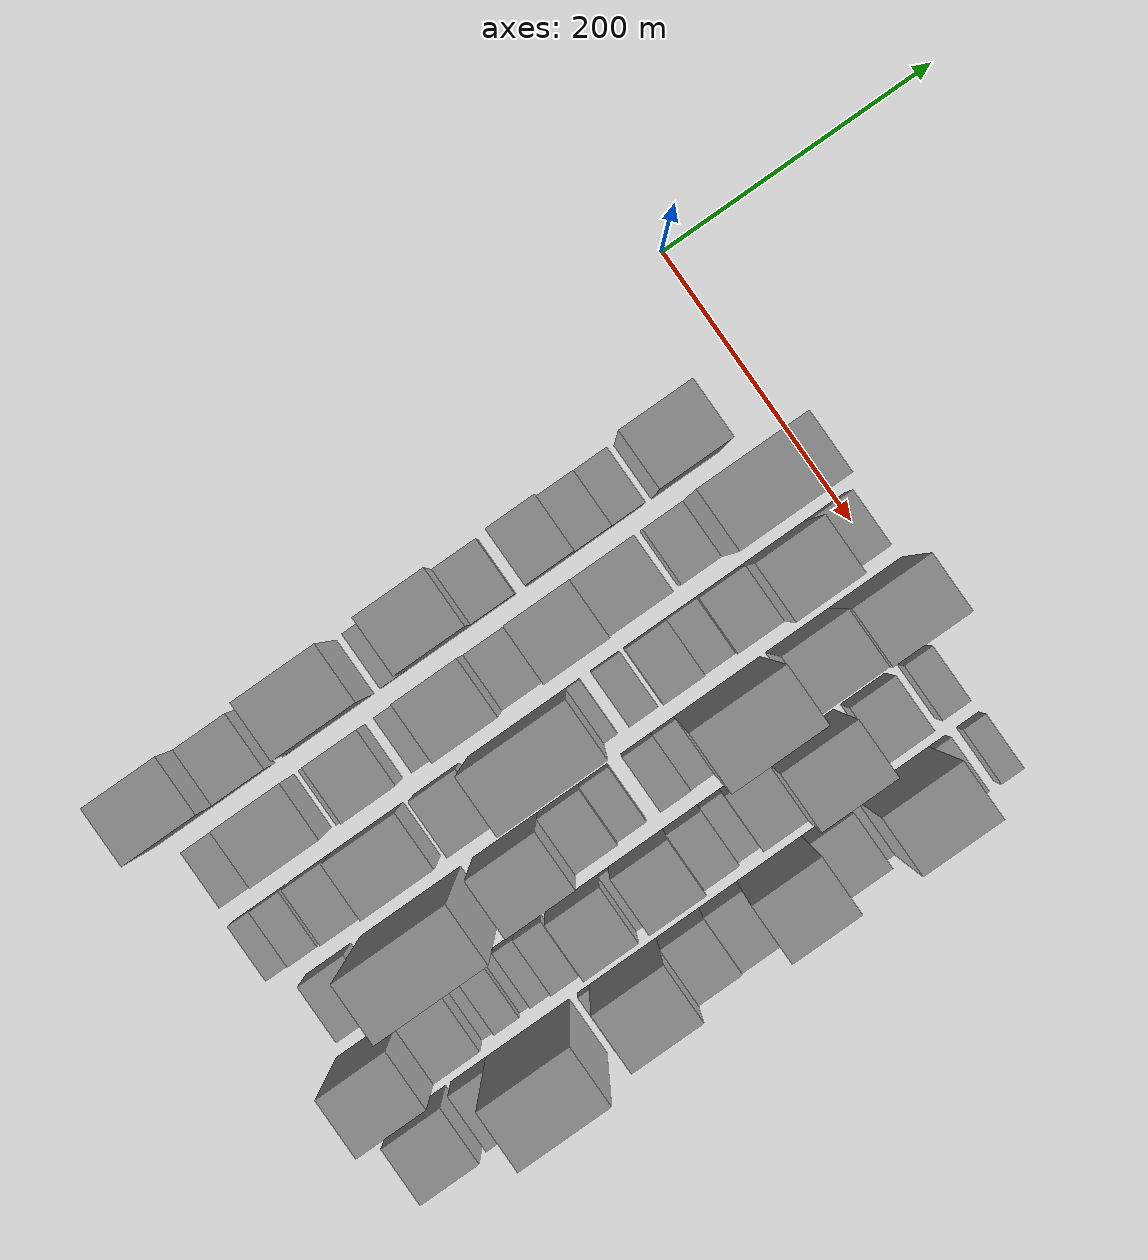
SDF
<sdf version="1.6">
 <world name="default">
  <model name="building_16">
   <static>1</static>
   <pose>100.0000 -434.1045 0 0.000000 0.000000 0.000000</pose>
   <link name="link">
    <pose>0 0 66.00 0 0 0</pose>
    <collision name="collision"><geometry><box><size>40.0000 50.8302 132.0000</size></box></geometry></collision>
    <visual name="visual">
     <cast_shadows>0</cast_shadows>
     <geometry><box><size>40.0000 50.8302 132.0000</size></box></geometry>
     <material>
      <script>
       <uri>model://grey_wall/materials/scripts</uri>
       <uri>model://grey_wall/materials/textures</uri>
       <name>vrc/grey_wall</name>
      </script>
     </material>
    </visual>
   </link>
  </model>
  <model name="building_17">
   <static>1</static>
   <pose>100.0000 -390.0490 0 0.000000 0.000000 0.000000</pose>
   <link name="link">
    <pose>0 0 31.50 0 0 0</pose>
    <collision name="collision"><geometry><box><size>40.0000 37.2809 63.0000</size></box></geometry></collision>
    <visual name="visual">
     <cast_shadows>0</cast_shadows>
     <geometry><box><size>40.0000 37.2809 63.0000</size></box></geometry>
     <material>
      <script>
       <uri>model://grey_wall/materials/scripts</uri>
       <uri>model://grey_wall/materials/textures</uri>
       <name>vrc/grey_wall</name>
      </script>
     </material>
    </visual>
   </link>
  </model>
  <model name="building_18">
   <static>1</static>
   <pose>100.0000 -359.2565 0 0.000000 0.000000 0.000000</pose>
   <link name="link">
    <pose>0 0 9.00 0 0 0</pose>
    <collision name="collision"><geometry><box><size>40.0000 8.3040 18.0000</size></box></geometry></collision>
    <visual name="visual">
     <cast_shadows>0</cast_shadows>
     <geometry><box><size>40.0000 8.3040 18.0000</size></box></geometry>
     <material>
      <script>
       <uri>model://grey_wall/materials/scripts</uri>
       <uri>model://grey_wall/materials/textures</uri>
       <name>vrc/grey_wall</name>
      </script>
     </material>
    </visual>
   </link>
  </model>
  <model name="building_19">
   <static>1</static>
   <pose>100.0000 -326.4940 0 0.000000 0.000000 0.000000</pose>
   <link name="link">
    <pose>0 0 73.50 0 0 0</pose>
    <collision name="collision"><geometry><box><size>40.0000 57.2211 147.0000</size></box></geometry></collision>
    <visual name="visual">
     <cast_shadows>0</cast_shadows>
     <geometry><box><size>40.0000 57.2211 147.0000</size></box></geometry>
     <material>
      <script>
       <uri>model://grey_wall/materials/scripts</uri>
       <uri>model://grey_wall/materials/textures</uri>
       <name>vrc/grey_wall</name>
      </script>
     </material>
    </visual>
   </link>
  </model>
  <model name="building_20">
   <static>1</static>
   <pose>100.0000 -281.8136 0 0.000000 0.000000 0.000000</pose>
   <link name="link">
    <pose>0 0 16.50 0 0 0</pose>
    <collision name="collision"><geometry><box><size>40.0000 18.1396 33.0000</size></box></geometry></collision>
    <visual name="visual">
     <cast_shadows>0</cast_shadows>
     <geometry><box><size>40.0000 18.1396 33.0000</size></box></geometry>
     <material>
      <script>
       <uri>model://grey_wall/materials/scripts</uri>
       <uri>model://grey_wall/materials/textures</uri>
       <name>vrc/grey_wall</name>
      </script>
     </material>
    </visual>
   </link>
  </model>
  <model name="building_21">
   <static>1</static>
   <pose>100.0000 -248.3978 0 0.000000 0.000000 0.000000</pose>
   <link name="link">
    <pose>0 0 72.00 0 0 0</pose>
    <collision name="collision"><geometry><box><size>40.0000 48.6920 144.0000</size></box></geometry></collision>
    <visual name="visual">
     <cast_shadows>0</cast_shadows>
     <geometry><box><size>40.0000 48.6920 144.0000</size></box></geometry>
     <material>
      <script>
       <uri>model://grey_wall/materials/scripts</uri>
       <uri>model://grey_wall/materials/textures</uri>
       <name>vrc/grey_wall</name>
      </script>
     </material>
    </visual>
   </link>
  </model>
  <model name="building_22">
   <static>1</static>
   <pose>100.0000 -208.1583 0 0.000000 0.000000 0.000000</pose>
   <link name="link">
    <pose>0 0 27.00 0 0 0</pose>
    <collision name="collision"><geometry><box><size>40.0000 31.7872 54.0000</size></box></geometry></collision>
    <visual name="visual">
     <cast_shadows>0</cast_shadows>
     <geometry><box><size>40.0000 31.7872 54.0000</size></box></geometry>
     <material>
      <script>
       <uri>model://grey_wall/materials/scripts</uri>
       <uri>model://grey_wall/materials/textures</uri>
       <name>vrc/grey_wall</name>
      </script>
     </material>
    </visual>
   </link>
  </model>
  <model name="building_23">
   <static>1</static>
   <pose>100.0000 -166.8493 0 0.000000 0.000000 0.000000</pose>
   <link name="link">
    <pose>0 0 46.50 0 0 0</pose>
    <collision name="collision"><geometry><box><size>40.0000 34.8307 93.0000</size></box></geometry></collision>
    <visual name="visual">
     <cast_shadows>0</cast_shadows>
     <geometry><box><size>40.0000 34.8307 93.0000</size></box></geometry>
     <material>
      <script>
       <uri>model://grey_wall/materials/scripts</uri>
       <uri>model://grey_wall/materials/textures</uri>
       <name>vrc/grey_wall</name>
      </script>
     </material>
    </visual>
   </link>
  </model>
  <model name="building_24">
   <static>1</static>
   <pose>100.0000 -135.8265 0 0.000000 0.000000 0.000000</pose>
   <link name="link">
    <pose>0 0 27.00 0 0 0</pose>
    <collision name="collision"><geometry><box><size>40.0000 27.2150 54.0000</size></box></geometry></collision>
    <visual name="visual">
     <cast_shadows>0</cast_shadows>
     <geometry><box><size>40.0000 27.2150 54.0000</size></box></geometry>
     <material>
      <script>
       <uri>model://grey_wall/materials/scripts</uri>
       <uri>model://grey_wall/materials/textures</uri>
       <name>vrc/grey_wall</name>
      </script>
     </material>
    </visual>
   </link>
  </model>
  <model name="building_25">
   <static>1</static>
   <pose>100.0000 -110.0625 0 0.000000 0.000000 0.000000</pose>
   <link name="link">
    <pose>0 0 24.00 0 0 0</pose>
    <collision name="collision"><geometry><box><size>40.0000 24.3129 48.0000</size></box></geometry></collision>
    <visual name="visual">
     <cast_shadows>0</cast_shadows>
     <geometry><box><size>40.0000 24.3129 48.0000</size></box></geometry>
     <material>
      <script>
       <uri>model://grey_wall/materials/scripts</uri>
       <uri>model://grey_wall/materials/textures</uri>
       <name>vrc/grey_wall</name>
      </script>
     </material>
    </visual>
   </link>
  </model>
  <model name="building_26">
   <static>1</static>
   <pose>100.0000 -66.6376 0 0.000000 0.000000 0.000000</pose>
   <link name="link">
    <pose>0 0 75.00 0 0 0</pose>
    <collision name="collision"><geometry><box><size>40.0000 50.5369 150.0000</size></box></geometry></collision>
    <visual name="visual">
     <cast_shadows>0</cast_shadows>
     <geometry><box><size>40.0000 50.5369 150.0000</size></box></geometry>
     <material>
      <script>
       <uri>model://grey_wall/materials/scripts</uri>
       <uri>model://grey_wall/materials/textures</uri>
       <name>vrc/grey_wall</name>
      </script>
     </material>
    </visual>
   </link>
  </model>
  <model name="building_60">
   <static>1</static>
   <pose>152.0000 -428.1090 0 0.000000 0.000000 0.000000</pose>
   <link name="link">
    <pose>0 0 25.50 0 0 0</pose>
    <collision name="collision"><geometry><box><size>40.0000 26.8173 51.0000</size></box></geometry></collision>
    <visual name="visual">
     <cast_shadows>0</cast_shadows>
     <geometry><box><size>40.0000 26.8173 51.0000</size></box></geometry>
     <material>
      <script>
       <uri>model://grey_wall/materials/scripts</uri>
       <uri>model://grey_wall/materials/textures</uri>
       <name>vrc/grey_wall</name>
      </script>
     </material>
    </visual>
   </link>
  </model>
  <model name="building_61">
   <static>1</static>
   <pose>152.0000 -390.2419 0 0.000000 0.000000 0.000000</pose>
   <link name="link">
    <pose>0 0 43.50 0 0 0</pose>
    <collision name="collision"><geometry><box><size>40.0000 48.9170 87.0000</size></box></geometry></collision>
    <visual name="visual">
     <cast_shadows>0</cast_shadows>
     <geometry><box><size>40.0000 48.9170 87.0000</size></box></geometry>
     <material>
      <script>
       <uri>model://grey_wall/materials/scripts</uri>
       <uri>model://grey_wall/materials/textures</uri>
       <name>vrc/grey_wall</name>
      </script>
     </material>
    </visual>
   </link>
  </model>
  <model name="building_62">
   <static>1</static>
   <pose>152.0000 -356.3260 0 0.000000 0.000000 0.000000</pose>
   <link name="link">
    <pose>0 0 9.00 0 0 0</pose>
    <collision name="collision"><geometry><box><size>40.0000 8.9146 18.0000</size></box></geometry></collision>
    <visual name="visual">
     <cast_shadows>0</cast_shadows>
     <geometry><box><size>40.0000 8.9146 18.0000</size></box></geometry>
     <material>
      <script>
       <uri>model://grey_wall/materials/scripts</uri>
       <uri>model://grey_wall/materials/textures</uri>
       <name>vrc/grey_wall</name>
      </script>
     </material>
    </visual>
   </link>
  </model>
  <model name="building_63">
   <static>1</static>
   <pose>152.0000 -332.4285 0 0.000000 0.000000 0.000000</pose>
   <link name="link">
    <pose>0 0 36.00 0 0 0</pose>
    <collision name="collision"><geometry><box><size>40.0000 38.8804 72.0000</size></box></geometry></collision>
    <visual name="visual">
     <cast_shadows>0</cast_shadows>
     <geometry><box><size>40.0000 38.8804 72.0000</size></box></geometry>
     <material>
      <script>
       <uri>model://grey_wall/materials/scripts</uri>
       <uri>model://grey_wall/materials/textures</uri>
       <name>vrc/grey_wall</name>
      </script>
     </material>
    </visual>
   </link>
  </model>
  <model name="building_64">
   <static>1</static>
   <pose>152.0000 -293.2963 0 0.000000 0.000000 0.000000</pose>
   <link name="link">
    <pose>0 0 18.00 0 0 0</pose>
    <collision name="collision"><geometry><box><size>40.0000 21.3841 36.0000</size></box></geometry></collision>
    <visual name="visual">
     <cast_shadows>0</cast_shadows>
     <geometry><box><size>40.0000 21.3841 36.0000</size></box></geometry>
     <material>
      <script>
       <uri>model://grey_wall/materials/scripts</uri>
       <uri>model://grey_wall/materials/textures</uri>
       <name>vrc/grey_wall</name>
      </script>
     </material>
    </visual>
   </link>
  </model>
  <model name="building_65">
   <static>1</static>
   <pose>152.0000 -260.2634 0 0.000000 0.000000 0.000000</pose>
   <link name="link">
    <pose>0 0 73.50 0 0 0</pose>
    <collision name="collision"><geometry><box><size>40.0000 44.6818 147.0000</size></box></geometry></collision>
    <visual name="visual">
     <cast_shadows>0</cast_shadows>
     <geometry><box><size>40.0000 44.6818 147.0000</size></box></geometry>
     <material>
      <script>
       <uri>model://grey_wall/materials/scripts</uri>
       <uri>model://grey_wall/materials/textures</uri>
       <name>vrc/grey_wall</name>
      </script>
     </material>
    </visual>
   </link>
  </model>
  <model name="building_66">
   <static>1</static>
   <pose>152.0000 -222.4888 0 0.000000 0.000000 0.000000</pose>
   <link name="link">
    <pose>0 0 27.00 0 0 0</pose>
    <collision name="collision"><geometry><box><size>40.0000 30.8674 54.0000</size></box></geometry></collision>
    <visual name="visual">
     <cast_shadows>0</cast_shadows>
     <geometry><box><size>40.0000 30.8674 54.0000</size></box></geometry>
     <material>
      <script>
       <uri>model://grey_wall/materials/scripts</uri>
       <uri>model://grey_wall/materials/textures</uri>
       <name>vrc/grey_wall</name>
      </script>
     </material>
    </visual>
   </link>
  </model>
  <model name="building_67">
   <static>1</static>
   <pose>152.0000 -184.3008 0 0.000000 0.000000 0.000000</pose>
   <link name="link">
    <pose>0 0 67.50 0 0 0</pose>
    <collision name="collision"><geometry><box><size>40.0000 45.5087 135.0000</size></box></geometry></collision>
    <visual name="visual">
     <cast_shadows>0</cast_shadows>
     <geometry><box><size>40.0000 45.5087 135.0000</size></box></geometry>
     <material>
      <script>
       <uri>model://grey_wall/materials/scripts</uri>
       <uri>model://grey_wall/materials/textures</uri>
       <name>vrc/grey_wall</name>
      </script>
     </material>
    </visual>
   </link>
  </model>
  <model name="building_68">
   <static>1</static>
   <pose>152.0000 -138.7405 0 0.000000 0.000000 0.000000</pose>
   <link name="link">
    <pose>0 0 43.50 0 0 0</pose>
    <collision name="collision"><geometry><box><size>40.0000 45.6117 87.0000</size></box></geometry></collision>
    <visual name="visual">
     <cast_shadows>0</cast_shadows>
     <geometry><box><size>40.0000 45.6117 87.0000</size></box></geometry>
     <material>
      <script>
       <uri>model://grey_wall/materials/scripts</uri>
       <uri>model://grey_wall/materials/textures</uri>
       <name>vrc/grey_wall</name>
      </script>
     </material>
    </visual>
   </link>
  </model>
  <model name="building_69">
   <static>1</static>
   <pose>152.0000 -94.4507 0 0.000000 0.000000 0.000000</pose>
   <link name="link">
    <pose>0 0 28.50 0 0 0</pose>
    <collision name="collision"><geometry><box><size>40.0000 28.9679 57.0000</size></box></geometry></collision>
    <visual name="visual">
     <cast_shadows>0</cast_shadows>
     <geometry><box><size>40.0000 28.9679 57.0000</size></box></geometry>
     <material>
      <script>
       <uri>model://grey_wall/materials/scripts</uri>
       <uri>model://grey_wall/materials/textures</uri>
       <name>vrc/grey_wall</name>
      </script>
     </material>
    </visual>
   </link>
  </model>
  <model name="building_70">
   <static>1</static>
   <pose>152.0000 -43.6034 0 0.000000 0.000000 0.000000</pose>
   <link name="link">
    <pose>0 0 112.50 0 0 0</pose>
    <collision name="collision"><geometry><box><size>40.0000 72.7267 225.0000</size></box></geometry></collision>
    <visual name="visual">
     <cast_shadows>0</cast_shadows>
     <geometry><box><size>40.0000 72.7267 225.0000</size></box></geometry>
     <material>
      <script>
       <uri>model://grey_wall/materials/scripts</uri>
       <uri>model://grey_wall/materials/textures</uri>
       <name>vrc/grey_wall</name>
      </script>
     </material>
    </visual>
   </link>
  </model>
  <model name="building_112">
   <static>1</static>
   <pose>204.0000 -438.7991 0 0.000000 0.000000 0.000000</pose>
   <link name="link">
    <pose>0 0 15.00 0 0 0</pose>
    <collision name="collision"><geometry><box><size>40.0000 17.3068 30.0000</size></box></geometry></collision>
    <visual name="visual">
     <cast_shadows>0</cast_shadows>
     <geometry><box><size>40.0000 17.3068 30.0000</size></box></geometry>
     <material>
      <script>
       <uri>model://grey_wall/materials/scripts</uri>
       <uri>model://grey_wall/materials/textures</uri>
       <name>vrc/grey_wall</name>
      </script>
     </material>
    </visual>
   </link>
  </model>
  <model name="building_113">
   <static>1</static>
   <pose>204.0000 -419.4457 0 0.000000 0.000000 0.000000</pose>
   <link name="link">
    <pose>0 0 21.00 0 0 0</pose>
    <collision name="collision"><geometry><box><size>40.0000 21.4001 42.0000</size></box></geometry></collision>
    <visual name="visual">
     <cast_shadows>0</cast_shadows>
     <geometry><box><size>40.0000 21.4001 42.0000</size></box></geometry>
     <material>
      <script>
       <uri>model://grey_wall/materials/scripts</uri>
       <uri>model://grey_wall/materials/textures</uri>
       <name>vrc/grey_wall</name>
      </script>
     </material>
    </visual>
   </link>
  </model>
  <model name="building_114">
   <static>1</static>
   <pose>204.0000 -388.9459 0 0.000000 0.000000 0.000000</pose>
   <link name="link">
    <pose>0 0 28.50 0 0 0</pose>
    <collision name="collision"><geometry><box><size>40.0000 31.5996 57.0000</size></box></geometry></collision>
    <visual name="visual">
     <cast_shadows>0</cast_shadows>
     <geometry><box><size>40.0000 31.5996 57.0000</size></box></geometry>
     <material>
      <script>
       <uri>model://grey_wall/materials/scripts</uri>
       <uri>model://grey_wall/materials/textures</uri>
       <name>vrc/grey_wall</name>
      </script>
     </material>
    </visual>
   </link>
  </model>
  <model name="building_115">
   <static>1</static>
   <pose>204.0000 -347.1856 0 0.000000 0.000000 0.000000</pose>
   <link name="link">
    <pose>0 0 43.50 0 0 0</pose>
    <collision name="collision"><geometry><box><size>40.0000 51.9211 87.0000</size></box></geometry></collision>
    <visual name="visual">
     <cast_shadows>0</cast_shadows>
     <geometry><box><size>40.0000 51.9211 87.0000</size></box></geometry>
     <material>
      <script>
       <uri>model://grey_wall/materials/scripts</uri>
       <uri>model://grey_wall/materials/textures</uri>
       <name>vrc/grey_wall</name>
      </script>
     </material>
    </visual>
   </link>
  </model>
  <model name="building_116">
   <static>1</static>
   <pose>204.0000 -296.3285 0 0.000000 0.000000 0.000000</pose>
   <link name="link">
    <pose>0 0 33.00 0 0 0</pose>
    <collision name="collision"><geometry><box><size>40.0000 33.7931 66.0000</size></box></geometry></collision>
    <visual name="visual">
     <cast_shadows>0</cast_shadows>
     <geometry><box><size>40.0000 33.7931 66.0000</size></box></geometry>
     <material>
      <script>
       <uri>model://grey_wall/materials/scripts</uri>
       <uri>model://grey_wall/materials/textures</uri>
       <name>vrc/grey_wall</name>
      </script>
     </material>
    </visual>
   </link>
  </model>
  <model name="building_117">
   <static>1</static>
   <pose>204.0000 -236.9912 0 0.000000 0.000000 0.000000</pose>
   <link name="link">
    <pose>0 0 96.00 0 0 0</pose>
    <collision name="collision"><geometry><box><size>40.0000 72.8815 192.0000</size></box></geometry></collision>
    <visual name="visual">
     <cast_shadows>0</cast_shadows>
     <geometry><box><size>40.0000 72.8815 192.0000</size></box></geometry>
     <material>
      <script>
       <uri>model://grey_wall/materials/scripts</uri>
       <uri>model://grey_wall/materials/textures</uri>
       <name>vrc/grey_wall</name>
      </script>
     </material>
    </visual>
   </link>
  </model>
  <model name="building_118">
   <static>1</static>
   <pose>204.0000 -195.4101 0 0.000000 0.000000 0.000000</pose>
   <link name="link">
    <pose>0 0 10.50 0 0 0</pose>
    <collision name="collision"><geometry><box><size>40.0000 10.2807 21.0000</size></box></geometry></collision>
    <visual name="visual">
     <cast_shadows>0</cast_shadows>
     <geometry><box><size>40.0000 10.2807 21.0000</size></box></geometry>
     <material>
      <script>
       <uri>model://grey_wall/materials/scripts</uri>
       <uri>model://grey_wall/materials/textures</uri>
       <name>vrc/grey_wall</name>
      </script>
     </material>
    </visual>
   </link>
  </model>
  <model name="building_119">
   <static>1</static>
   <pose>204.0000 -171.6462 0 0.000000 0.000000 0.000000</pose>
   <link name="link">
    <pose>0 0 18.00 0 0 0</pose>
    <collision name="collision"><geometry><box><size>40.0000 21.2470 36.0000</size></box></geometry></collision>
    <visual name="visual">
     <cast_shadows>0</cast_shadows>
     <geometry><box><size>40.0000 21.2470 36.0000</size></box></geometry>
     <material>
      <script>
       <uri>model://grey_wall/materials/scripts</uri>
       <uri>model://grey_wall/materials/textures</uri>
       <name>vrc/grey_wall</name>
      </script>
     </material>
    </visual>
   </link>
  </model>
  <model name="building_120">
   <static>1</static>
   <pose>204.0000 -142.9327 0 0.000000 0.000000 0.000000</pose>
   <link name="link">
    <pose>0 0 27.00 0 0 0</pose>
    <collision name="collision"><geometry><box><size>40.0000 30.1801 54.0000</size></box></geometry></collision>
    <visual name="visual">
     <cast_shadows>0</cast_shadows>
     <geometry><box><size>40.0000 30.1801 54.0000</size></box></geometry>
     <material>
      <script>
       <uri>model://grey_wall/materials/scripts</uri>
       <uri>model://grey_wall/materials/textures</uri>
       <name>vrc/grey_wall</name>
      </script>
     </material>
    </visual>
   </link>
  </model>
  <model name="building_121">
   <static>1</static>
   <pose>204.0000 -116.5714 0 0.000000 0.000000 0.000000</pose>
   <link name="link">
    <pose>0 0 21.00 0 0 0</pose>
    <collision name="collision"><geometry><box><size>40.0000 22.5425 42.0000</size></box></geometry></collision>
    <visual name="visual">
     <cast_shadows>0</cast_shadows>
     <geometry><box><size>40.0000 22.5425 42.0000</size></box></geometry>
     <material>
      <script>
       <uri>model://grey_wall/materials/scripts</uri>
       <uri>model://grey_wall/materials/textures</uri>
       <name>vrc/grey_wall</name>
      </script>
     </material>
    </visual>
   </link>
  </model>
  <model name="building_122">
   <static>1</static>
   <pose>204.0000 -88.5897 0 0.000000 0.000000 0.000000</pose>
   <link name="link">
    <pose>0 0 31.50 0 0 0</pose>
    <collision name="collision"><geometry><box><size>40.0000 33.4210 63.0000</size></box></geometry></collision>
    <visual name="visual">
     <cast_shadows>0</cast_shadows>
     <geometry><box><size>40.0000 33.4210 63.0000</size></box></geometry>
     <material>
      <script>
       <uri>model://grey_wall/materials/scripts</uri>
       <uri>model://grey_wall/materials/textures</uri>
       <name>vrc/grey_wall</name>
      </script>
     </material>
    </visual>
   </link>
  </model>
  <model name="building_123">
   <static>1</static>
   <pose>204.0000 -47.9838 0 0.000000 0.000000 0.000000</pose>
   <link name="link">
    <pose>0 0 72.00 0 0 0</pose>
    <collision name="collision"><geometry><box><size>40.0000 47.7908 144.0000</size></box></geometry></collision>
    <visual name="visual">
     <cast_shadows>0</cast_shadows>
     <geometry><box><size>40.0000 47.7908 144.0000</size></box></geometry>
     <material>
      <script>
       <uri>model://grey_wall/materials/scripts</uri>
       <uri>model://grey_wall/materials/textures</uri>
       <name>vrc/grey_wall</name>
      </script>
     </material>
    </visual>
   </link>
  </model>
  <model name="building_124">
   <static>1</static>
   <pose>204.0000 -8.7911 0 0.000000 0.000000 0.000000</pose>
   <link name="link">
    <pose>0 0 25.50 0 0 0</pose>
    <collision name="collision"><geometry><box><size>40.0000 30.5945 51.0000</size></box></geometry></collision>
    <visual name="visual">
     <cast_shadows>0</cast_shadows>
     <geometry><box><size>40.0000 30.5945 51.0000</size></box></geometry>
     <material>
      <script>
       <uri>model://grey_wall/materials/scripts</uri>
       <uri>model://grey_wall/materials/textures</uri>
       <name>vrc/grey_wall</name>
      </script>
     </material>
    </visual>
   </link>
  </model>
  <model name="building_161">
   <static>1</static>
   <pose>256.0000 -413.1277 0 0.000000 0.000000 0.000000</pose>
   <link name="link">
    <pose>0 0 28.50 0 0 0</pose>
    <collision name="collision"><geometry><box><size>40.0000 32.9516 57.0000</size></box></geometry></collision>
    <visual name="visual">
     <cast_shadows>0</cast_shadows>
     <geometry><box><size>40.0000 32.9516 57.0000</size></box></geometry>
     <material>
      <script>
       <uri>model://grey_wall/materials/scripts</uri>
       <uri>model://grey_wall/materials/textures</uri>
       <name>vrc/grey_wall</name>
      </script>
     </material>
    </visual>
   </link>
  </model>
  <model name="building_162">
   <static>1</static>
   <pose>256.0000 -352.3380 0 0.000000 0.000000 0.000000</pose>
   <link name="link">
    <pose>0 0 105.00 0 0 0</pose>
    <collision name="collision"><geometry><box><size>40.0000 74.6278 210.0000</size></box></geometry></collision>
    <visual name="visual">
     <cast_shadows>0</cast_shadows>
     <geometry><box><size>40.0000 74.6278 210.0000</size></box></geometry>
     <material>
      <script>
       <uri>model://grey_wall/materials/scripts</uri>
       <uri>model://grey_wall/materials/textures</uri>
       <name>vrc/grey_wall</name>
      </script>
     </material>
    </visual>
   </link>
  </model>
  <model name="building_163">
   <static>1</static>
   <pose>256.0000 -282.0888 0 0.000000 0.000000 0.000000</pose>
   <link name="link">
    <pose>0 0 70.50 0 0 0</pose>
    <collision name="collision"><geometry><box><size>40.0000 47.8705 141.0000</size></box></geometry></collision>
    <visual name="visual">
     <cast_shadows>0</cast_shadows>
     <geometry><box><size>40.0000 47.8705 141.0000</size></box></geometry>
     <material>
      <script>
       <uri>model://grey_wall/materials/scripts</uri>
       <uri>model://grey_wall/materials/textures</uri>
       <name>vrc/grey_wall</name>
      </script>
     </material>
    </visual>
   </link>
  </model>
  <model name="building_164">
   <static>1</static>
   <pose>256.0000 -242.8004 0 0.000000 0.000000 0.000000</pose>
   <link name="link">
    <pose>0 0 27.00 0 0 0</pose>
    <collision name="collision"><geometry><box><size>40.0000 30.7063 54.0000</size></box></geometry></collision>
    <visual name="visual">
     <cast_shadows>0</cast_shadows>
     <geometry><box><size>40.0000 30.7063 54.0000</size></box></geometry>
     <material>
      <script>
       <uri>model://grey_wall/materials/scripts</uri>
       <uri>model://grey_wall/materials/textures</uri>
       <name>vrc/grey_wall</name>
      </script>
     </material>
    </visual>
   </link>
  </model>
  <model name="building_165">
   <static>1</static>
   <pose>256.0000 -216.7515 0 0.000000 0.000000 0.000000</pose>
   <link name="link">
    <pose>0 0 18.00 0 0 0</pose>
    <collision name="collision"><geometry><box><size>40.0000 21.3916 36.0000</size></box></geometry></collision>
    <visual name="visual">
     <cast_shadows>0</cast_shadows>
     <geometry><box><size>40.0000 21.3916 36.0000</size></box></geometry>
     <material>
      <script>
       <uri>model://grey_wall/materials/scripts</uri>
       <uri>model://grey_wall/materials/textures</uri>
       <name>vrc/grey_wall</name>
      </script>
     </material>
    </visual>
   </link>
  </model>
  <model name="building_166">
   <static>1</static>
   <pose>256.0000 -184.8962 0 0.000000 0.000000 0.000000</pose>
   <link name="link">
    <pose>0 0 19.50 0 0 0</pose>
    <collision name="collision"><geometry><box><size>40.0000 22.3189 39.0000</size></box></geometry></collision>
    <visual name="visual">
     <cast_shadows>0</cast_shadows>
     <geometry><box><size>40.0000 22.3189 39.0000</size></box></geometry>
     <material>
      <script>
       <uri>model://grey_wall/materials/scripts</uri>
       <uri>model://grey_wall/materials/textures</uri>
       <name>vrc/grey_wall</name>
      </script>
     </material>
    </visual>
   </link>
  </model>
  <model name="building_167">
   <static>1</static>
   <pose>256.0000 -165.2519 0 0.000000 0.000000 0.000000</pose>
   <link name="link">
    <pose>0 0 16.50 0 0 0</pose>
    <collision name="collision"><geometry><box><size>40.0000 16.9697 33.0000</size></box></geometry></collision>
    <visual name="visual">
     <cast_shadows>0</cast_shadows>
     <geometry><box><size>40.0000 16.9697 33.0000</size></box></geometry>
     <material>
      <script>
       <uri>model://grey_wall/materials/scripts</uri>
       <uri>model://grey_wall/materials/textures</uri>
       <name>vrc/grey_wall</name>
      </script>
     </material>
    </visual>
   </link>
  </model>
  <model name="building_168">
   <static>1</static>
   <pose>256.0000 -124.6970 0 0.000000 0.000000 0.000000</pose>
   <link name="link">
    <pose>0 0 103.50 0 0 0</pose>
    <collision name="collision"><geometry><box><size>40.0000 64.1401 207.0000</size></box></geometry></collision>
    <visual name="visual">
     <cast_shadows>0</cast_shadows>
     <geometry><box><size>40.0000 64.1401 207.0000</size></box></geometry>
     <material>
      <script>
       <uri>model://grey_wall/materials/scripts</uri>
       <uri>model://grey_wall/materials/textures</uri>
       <name>vrc/grey_wall</name>
      </script>
     </material>
    </visual>
   </link>
  </model>
  <model name="building_169">
   <static>1</static>
   <pose>256.0000 -65.1473 0 0.000000 0.000000 0.000000</pose>
   <link name="link">
    <pose>0 0 61.50 0 0 0</pose>
    <collision name="collision"><geometry><box><size>40.0000 46.9593 123.0000</size></box></geometry></collision>
    <visual name="visual">
     <cast_shadows>0</cast_shadows>
     <geometry><box><size>40.0000 46.9593 123.0000</size></box></geometry>
     <material>
      <script>
       <uri>model://grey_wall/materials/scripts</uri>
       <uri>model://grey_wall/materials/textures</uri>
       <name>vrc/grey_wall</name>
      </script>
     </material>
    </visual>
   </link>
  </model>
  <model name="building_170">
   <static>1</static>
   <pose>256.0000 -14.2713 0 0.000000 0.000000 0.000000</pose>
   <link name="link">
    <pose>0 0 69.00 0 0 0</pose>
    <collision name="collision"><geometry><box><size>40.0000 54.7929 138.0000</size></box></geometry></collision>
    <visual name="visual">
     <cast_shadows>0</cast_shadows>
     <geometry><box><size>40.0000 54.7929 138.0000</size></box></geometry>
     <material>
      <script>
       <uri>model://grey_wall/materials/scripts</uri>
       <uri>model://grey_wall/materials/textures</uri>
       <name>vrc/grey_wall</name>
      </script>
     </material>
    </visual>
   </link>
  </model>
  <model name="building_207">
   <static>1</static>
   <pose>308.0000 -419.8298 0 0.000000 0.000000 0.000000</pose>
   <link name="link">
    <pose>0 0 72.00 0 0 0</pose>
    <collision name="collision"><geometry><box><size>40.0000 47.6735 144.0000</size></box></geometry></collision>
    <visual name="visual">
     <cast_shadows>0</cast_shadows>
     <geometry><box><size>40.0000 47.6735 144.0000</size></box></geometry>
     <material>
      <script>
       <uri>model://grey_wall/materials/scripts</uri>
       <uri>model://grey_wall/materials/textures</uri>
       <name>vrc/grey_wall</name>
      </script>
     </material>
    </visual>
   </link>
  </model>
  <model name="building_208">
   <static>1</static>
   <pose>308.0000 -379.3973 0 0.000000 0.000000 0.000000</pose>
   <link name="link">
    <pose>0 0 31.50 0 0 0</pose>
    <collision name="collision"><geometry><box><size>40.0000 33.1915 63.0000</size></box></geometry></collision>
    <visual name="visual">
     <cast_shadows>0</cast_shadows>
     <geometry><box><size>40.0000 33.1915 63.0000</size></box></geometry>
     <material>
      <script>
       <uri>model://grey_wall/materials/scripts</uri>
       <uri>model://grey_wall/materials/textures</uri>
       <name>vrc/grey_wall</name>
      </script>
     </material>
    </visual>
   </link>
  </model>
  <model name="building_209">
   <static>1</static>
   <pose>308.0000 -358.1611 0 0.000000 0.000000 0.000000</pose>
   <link name="link">
    <pose>0 0 10.50 0 0 0</pose>
    <collision name="collision"><geometry><box><size>40.0000 9.2810 21.0000</size></box></geometry></collision>
    <visual name="visual">
     <cast_shadows>0</cast_shadows>
     <geometry><box><size>40.0000 9.2810 21.0000</size></box></geometry>
     <material>
      <script>
       <uri>model://grey_wall/materials/scripts</uri>
       <uri>model://grey_wall/materials/textures</uri>
       <name>vrc/grey_wall</name>
      </script>
     </material>
    </visual>
   </link>
  </model>
  <model name="building_210">
   <static>1</static>
   <pose>308.0000 -344.3675 0 0.000000 0.000000 0.000000</pose>
   <link name="link">
    <pose>0 0 18.00 0 0 0</pose>
    <collision name="collision"><geometry><box><size>40.0000 18.3061 36.0000</size></box></geometry></collision>
    <visual name="visual">
     <cast_shadows>0</cast_shadows>
     <geometry><box><size>40.0000 18.3061 36.0000</size></box></geometry>
     <material>
      <script>
       <uri>model://grey_wall/materials/scripts</uri>
       <uri>model://grey_wall/materials/textures</uri>
       <name>vrc/grey_wall</name>
      </script>
     </material>
    </visual>
   </link>
  </model>
  <model name="building_211">
   <static>1</static>
   <pose>308.0000 -331.2438 0 0.000000 0.000000 0.000000</pose>
   <link name="link">
    <pose>0 0 9.00 0 0 0</pose>
    <collision name="collision"><geometry><box><size>40.0000 7.9414 18.0000</size></box></geometry></collision>
    <visual name="visual">
     <cast_shadows>0</cast_shadows>
     <geometry><box><size>40.0000 7.9414 18.0000</size></box></geometry>
     <material>
      <script>
       <uri>model://grey_wall/materials/scripts</uri>
       <uri>model://grey_wall/materials/textures</uri>
       <name>vrc/grey_wall</name>
      </script>
     </material>
    </visual>
   </link>
  </model>
  <model name="building_212">
   <static>1</static>
   <pose>308.0000 -319.6777 0 0.000000 0.000000 0.000000</pose>
   <link name="link">
    <pose>0 0 15.00 0 0 0</pose>
    <collision name="collision"><geometry><box><size>40.0000 15.1908 30.0000</size></box></geometry></collision>
    <visual name="visual">
     <cast_shadows>0</cast_shadows>
     <geometry><box><size>40.0000 15.1908 30.0000</size></box></geometry>
     <material>
      <script>
       <uri>model://grey_wall/materials/scripts</uri>
       <uri>model://grey_wall/materials/textures</uri>
       <name>vrc/grey_wall</name>
      </script>
     </material>
    </visual>
   </link>
  </model>
  <model name="building_213">
   <static>1</static>
   <pose>308.0000 -301.9006 0 0.000000 0.000000 0.000000</pose>
   <link name="link">
    <pose>0 0 19.50 0 0 0</pose>
    <collision name="collision"><geometry><box><size>40.0000 20.3633 39.0000</size></box></geometry></collision>
    <visual name="visual">
     <cast_shadows>0</cast_shadows>
     <geometry><box><size>40.0000 20.3633 39.0000</size></box></geometry>
     <material>
      <script>
       <uri>model://grey_wall/materials/scripts</uri>
       <uri>model://grey_wall/materials/textures</uri>
       <name>vrc/grey_wall</name>
      </script>
     </material>
    </visual>
   </link>
  </model>
  <model name="building_214">
   <static>1</static>
   <pose>308.0000 -269.1275 0 0.000000 0.000000 0.000000</pose>
   <link name="link">
    <pose>0 0 37.50 0 0 0</pose>
    <collision name="collision"><geometry><box><size>40.0000 39.1830 75.0000</size></box></geometry></collision>
    <visual name="visual">
     <cast_shadows>0</cast_shadows>
     <geometry><box><size>40.0000 39.1830 75.0000</size></box></geometry>
     <material>
      <script>
       <uri>model://grey_wall/materials/scripts</uri>
       <uri>model://grey_wall/materials/textures</uri>
       <name>vrc/grey_wall</name>
      </script>
     </material>
    </visual>
   </link>
  </model>
  <model name="building_215">
   <static>1</static>
   <pose>308.0000 -245.7541 0 0.000000 0.000000 0.000000</pose>
   <link name="link">
    <pose>0 0 9.00 0 0 0</pose>
    <collision name="collision"><geometry><box><size>40.0000 7.5638 18.0000</size></box></geometry></collision>
    <visual name="visual">
     <cast_shadows>0</cast_shadows>
     <geometry><box><size>40.0000 7.5638 18.0000</size></box></geometry>
     <material>
      <script>
       <uri>model://grey_wall/materials/scripts</uri>
       <uri>model://grey_wall/materials/textures</uri>
       <name>vrc/grey_wall</name>
      </script>
     </material>
    </visual>
   </link>
  </model>
  <model name="building_216">
   <static>1</static>
   <pose>308.0000 -221.6010 0 0.000000 0.000000 0.000000</pose>
   <link name="link">
    <pose>0 0 37.50 0 0 0</pose>
    <collision name="collision"><geometry><box><size>40.0000 40.7425 75.0000</size></box></geometry></collision>
    <visual name="visual">
     <cast_shadows>0</cast_shadows>
     <geometry><box><size>40.0000 40.7425 75.0000</size></box></geometry>
     <material>
      <script>
       <uri>model://grey_wall/materials/scripts</uri>
       <uri>model://grey_wall/materials/textures</uri>
       <name>vrc/grey_wall</name>
      </script>
     </material>
    </visual>
   </link>
  </model>
  <model name="building_217">
   <static>1</static>
   <pose>308.0000 -188.4343 0 0.000000 0.000000 0.000000</pose>
   <link name="link">
    <pose>0 0 24.00 0 0 0</pose>
    <collision name="collision"><geometry><box><size>40.0000 25.5908 48.0000</size></box></geometry></collision>
    <visual name="visual">
     <cast_shadows>0</cast_shadows>
     <geometry><box><size>40.0000 25.5908 48.0000</size></box></geometry>
     <material>
      <script>
       <uri>model://grey_wall/materials/scripts</uri>
       <uri>model://grey_wall/materials/textures</uri>
       <name>vrc/grey_wall</name>
      </script>
     </material>
    </visual>
   </link>
  </model>
  <model name="building_218">
   <static>1</static>
   <pose>308.0000 -167.5558 0 0.000000 0.000000 0.000000</pose>
   <link name="link">
    <pose>0 0 15.00 0 0 0</pose>
    <collision name="collision"><geometry><box><size>40.0000 16.1662 30.0000</size></box></geometry></collision>
    <visual name="visual">
     <cast_shadows>0</cast_shadows>
     <geometry><box><size>40.0000 16.1662 30.0000</size></box></geometry>
     <material>
      <script>
       <uri>model://grey_wall/materials/scripts</uri>
       <uri>model://grey_wall/materials/textures</uri>
       <name>vrc/grey_wall</name>
      </script>
     </material>
    </visual>
   </link>
  </model>
  <model name="building_219">
   <static>1</static>
   <pose>308.0000 -143.4528 0 0.000000 0.000000 0.000000</pose>
   <link name="link">
    <pose>0 0 30.00 0 0 0</pose>
    <collision name="collision"><geometry><box><size>40.0000 32.0397 60.0000</size></box></geometry></collision>
    <visual name="visual">
     <cast_shadows>0</cast_shadows>
     <geometry><box><size>40.0000 32.0397 60.0000</size></box></geometry>
     <material>
      <script>
       <uri>model://grey_wall/materials/scripts</uri>
       <uri>model://grey_wall/materials/textures</uri>
       <name>vrc/grey_wall</name>
      </script>
     </material>
    </visual>
   </link>
  </model>
  <model name="building_220">
   <static>1</static>
   <pose>308.0000 -100.9031 0 0.000000 0.000000 0.000000</pose>
   <link name="link">
    <pose>0 0 72.00 0 0 0</pose>
    <collision name="collision"><geometry><box><size>40.0000 53.0597 144.0000</size></box></geometry></collision>
    <visual name="visual">
     <cast_shadows>0</cast_shadows>
     <geometry><box><size>40.0000 53.0597 144.0000</size></box></geometry>
     <material>
      <script>
       <uri>model://grey_wall/materials/scripts</uri>
       <uri>model://grey_wall/materials/textures</uri>
       <name>vrc/grey_wall</name>
      </script>
     </material>
    </visual>
   </link>
  </model>
  <model name="building_221">
   <static>1</static>
   <pose>308.0000 -52.7690 0 0.000000 0.000000 0.000000</pose>
   <link name="link">
    <pose>0 0 28.50 0 0 0</pose>
    <collision name="collision"><geometry><box><size>40.0000 33.2086 57.0000</size></box></geometry></collision>
    <visual name="visual">
     <cast_shadows>0</cast_shadows>
     <geometry><box><size>40.0000 33.2086 57.0000</size></box></geometry>
     <material>
      <script>
       <uri>model://grey_wall/materials/scripts</uri>
       <uri>model://grey_wall/materials/textures</uri>
       <name>vrc/grey_wall</name>
      </script>
     </material>
    </visual>
   </link>
  </model>
  <model name="building_222">
   <static>1</static>
   <pose>308.0000 -16.7462 0 0.000000 0.000000 0.000000</pose>
   <link name="link">
    <pose>0 0 18.00 0 0 0</pose>
    <collision name="collision"><geometry><box><size>40.0000 20.8369 36.0000</size></box></geometry></collision>
    <visual name="visual">
     <cast_shadows>0</cast_shadows>
     <geometry><box><size>40.0000 20.8369 36.0000</size></box></geometry>
     <material>
      <script>
       <uri>model://grey_wall/materials/scripts</uri>
       <uri>model://grey_wall/materials/textures</uri>
       <name>vrc/grey_wall</name>
      </script>
     </material>
    </visual>
   </link>
  </model>
  <model name="building_259">
   <static>1</static>
   <pose>360.0000 -420.0544 0 0.000000 0.000000 0.000000</pose>
   <link name="link">
    <pose>0 0 37.50 0 0 0</pose>
    <collision name="collision"><geometry><box><size>40.0000 41.9460 75.0000</size></box></geometry></collision>
    <visual name="visual">
     <cast_shadows>0</cast_shadows>
     <geometry><box><size>40.0000 41.9460 75.0000</size></box></geometry>
     <material>
      <script>
       <uri>model://grey_wall/materials/scripts</uri>
       <uri>model://grey_wall/materials/textures</uri>
       <name>vrc/grey_wall</name>
      </script>
     </material>
    </visual>
   </link>
  </model>
  <model name="building_260">
   <static>1</static>
   <pose>360.0000 -382.2548 0 0.000000 0.000000 0.000000</pose>
   <link name="link">
    <pose>0 0 25.50 0 0 0</pose>
    <collision name="collision"><geometry><box><size>40.0000 25.6531 51.0000</size></box></geometry></collision>
    <visual name="visual">
     <cast_shadows>0</cast_shadows>
     <geometry><box><size>40.0000 25.6531 51.0000</size></box></geometry>
     <material>
      <script>
       <uri>model://grey_wall/materials/scripts</uri>
       <uri>model://grey_wall/materials/textures</uri>
       <name>vrc/grey_wall</name>
      </script>
     </material>
    </visual>
   </link>
  </model>
  <model name="building_261">
   <static>1</static>
   <pose>360.0000 -338.2842 0 0.000000 0.000000 0.000000</pose>
   <link name="link">
    <pose>0 0 90.00 0 0 0</pose>
    <collision name="collision"><geometry><box><size>40.0000 62.2883 180.0000</size></box></geometry></collision>
    <visual name="visual">
     <cast_shadows>0</cast_shadows>
     <geometry><box><size>40.0000 62.2883 180.0000</size></box></geometry>
     <material>
      <script>
       <uri>model://grey_wall/materials/scripts</uri>
       <uri>model://grey_wall/materials/textures</uri>
       <name>vrc/grey_wall</name>
      </script>
     </material>
    </visual>
   </link>
  </model>
  <model name="building_262">
   <static>1</static>
   <pose>360.0000 -296.8295 0 0.000000 0.000000 0.000000</pose>
   <link name="link">
    <pose>0 0 10.50 0 0 0</pose>
    <collision name="collision"><geometry><box><size>40.0000 8.6211 21.0000</size></box></geometry></collision>
    <visual name="visual">
     <cast_shadows>0</cast_shadows>
     <geometry><box><size>40.0000 8.6211 21.0000</size></box></geometry>
     <material>
      <script>
       <uri>model://grey_wall/materials/scripts</uri>
       <uri>model://grey_wall/materials/textures</uri>
       <name>vrc/grey_wall</name>
      </script>
     </material>
    </visual>
   </link>
  </model>
  <model name="building_263">
   <static>1</static>
   <pose>360.0000 -267.5234 0 0.000000 0.000000 0.000000</pose>
   <link name="link">
    <pose>0 0 63.00 0 0 0</pose>
    <collision name="collision"><geometry><box><size>40.0000 49.9911 126.0000</size></box></geometry></collision>
    <visual name="visual">
     <cast_shadows>0</cast_shadows>
     <geometry><box><size>40.0000 49.9911 126.0000</size></box></geometry>
     <material>
      <script>
       <uri>model://grey_wall/materials/scripts</uri>
       <uri>model://grey_wall/materials/textures</uri>
       <name>vrc/grey_wall</name>
      </script>
     </material>
    </visual>
   </link>
  </model>
  <model name="building_264">
   <static>1</static>
   <pose>360.0000 -226.6748 0 0.000000 0.000000 0.000000</pose>
   <link name="link">
    <pose>0 0 30.00 0 0 0</pose>
    <collision name="collision"><geometry><box><size>40.0000 31.7061 60.0000</size></box></geometry></collision>
    <visual name="visual">
     <cast_shadows>0</cast_shadows>
     <geometry><box><size>40.0000 31.7061 60.0000</size></box></geometry>
     <material>
      <script>
       <uri>model://grey_wall/materials/scripts</uri>
       <uri>model://grey_wall/materials/textures</uri>
       <name>vrc/grey_wall</name>
      </script>
     </material>
    </visual>
   </link>
  </model>
  <model name="building_265">
   <static>1</static>
   <pose>360.0000 -196.8664 0 0.000000 0.000000 0.000000</pose>
   <link name="link">
    <pose>0 0 27.00 0 0 0</pose>
    <collision name="collision"><geometry><box><size>40.0000 27.9108 54.0000</size></box></geometry></collision>
    <visual name="visual">
     <cast_shadows>0</cast_shadows>
     <geometry><box><size>40.0000 27.9108 54.0000</size></box></geometry>
     <material>
      <script>
       <uri>model://grey_wall/materials/scripts</uri>
       <uri>model://grey_wall/materials/textures</uri>
       <name>vrc/grey_wall</name>
      </script>
     </material>
    </visual>
   </link>
  </model>
  <model name="building_266">
   <static>1</static>
   <pose>360.0000 -158.7866 0 0.000000 0.000000 0.000000</pose>
   <link name="link">
    <pose>0 0 67.50 0 0 0</pose>
    <collision name="collision"><geometry><box><size>40.0000 48.2486 135.0000</size></box></geometry></collision>
    <visual name="visual">
     <cast_shadows>0</cast_shadows>
     <geometry><box><size>40.0000 48.2486 135.0000</size></box></geometry>
     <material>
      <script>
       <uri>model://grey_wall/materials/scripts</uri>
       <uri>model://grey_wall/materials/textures</uri>
       <name>vrc/grey_wall</name>
      </script>
     </material>
    </visual>
   </link>
  </model>
  <model name="building_267">
   <static>1</static>
   <pose>360.0000 -118.6960 0 0.000000 0.000000 0.000000</pose>
   <link name="link">
    <pose>0 0 28.50 0 0 0</pose>
    <collision name="collision"><geometry><box><size>40.0000 31.9326 57.0000</size></box></geometry></collision>
    <visual name="visual">
     <cast_shadows>0</cast_shadows>
     <geometry><box><size>40.0000 31.9326 57.0000</size></box></geometry>
     <material>
      <script>
       <uri>model://grey_wall/materials/scripts</uri>
       <uri>model://grey_wall/materials/textures</uri>
       <name>vrc/grey_wall</name>
      </script>
     </material>
    </visual>
   </link>
  </model>
  <model name="building_268">
   <static>1</static>
   <pose>360.0000 -99.0884 0 0.000000 0.000000 0.000000</pose>
   <link name="link">
    <pose>0 0 7.50 0 0 0</pose>
    <collision name="collision"><geometry><box><size>40.0000 7.2828 15.0000</size></box></geometry></collision>
    <visual name="visual">
     <cast_shadows>0</cast_shadows>
     <geometry><box><size>40.0000 7.2828 15.0000</size></box></geometry>
     <material>
      <script>
       <uri>model://grey_wall/materials/scripts</uri>
       <uri>model://grey_wall/materials/textures</uri>
       <name>vrc/grey_wall</name>
      </script>
     </material>
    </visual>
   </link>
  </model>
  <model name="building_269">
   <static>1</static>
   <pose>360.0000 -67.7471 0 0.000000 0.000000 0.000000</pose>
   <link name="link">
    <pose>0 0 73.50 0 0 0</pose>
    <collision name="collision"><geometry><box><size>40.0000 55.3998 147.0000</size></box></geometry></collision>
    <visual name="visual">
     <cast_shadows>0</cast_shadows>
     <geometry><box><size>40.0000 55.3998 147.0000</size></box></geometry>
     <material>
      <script>
       <uri>model://grey_wall/materials/scripts</uri>
       <uri>model://grey_wall/materials/textures</uri>
       <name>vrc/grey_wall</name>
      </script>
     </material>
    </visual>
   </link>
  </model>
  <model name="building_270">
   <static>1</static>
   <pose>360.0000 -33.8571 0 0.000000 0.000000 0.000000</pose>
   <link name="link">
    <pose>0 0 13.50 0 0 0</pose>
    <collision name="collision"><geometry><box><size>40.0000 12.3802 27.0000</size></box></geometry></collision>
    <visual name="visual">
     <cast_shadows>0</cast_shadows>
     <geometry><box><size>40.0000 12.3802 27.0000</size></box></geometry>
     <material>
      <script>
       <uri>model://grey_wall/materials/scripts</uri>
       <uri>model://grey_wall/materials/textures</uri>
       <name>vrc/grey_wall</name>
      </script>
     </material>
    </visual>
   </link>
  </model>
  <model name="building_271">
   <static>1</static>
   <pose>360.0000 -11.3135 0 0.000000 0.000000 0.000000</pose>
   <link name="link">
    <pose>0 0 15.00 0 0 0</pose>
    <collision name="collision"><geometry><box><size>40.0000 16.7069 30.0000</size></box></geometry></collision>
    <visual name="visual">
     <cast_shadows>0</cast_shadows>
     <geometry><box><size>40.0000 16.7069 30.0000</size></box></geometry>
     <material>
      <script>
       <uri>model://grey_wall/materials/scripts</uri>
       <uri>model://grey_wall/materials/textures</uri>
       <name>vrc/grey_wall</name>
      </script>
     </material>
    </visual>
   </link>
  </model>
 </world>
</sdf>
